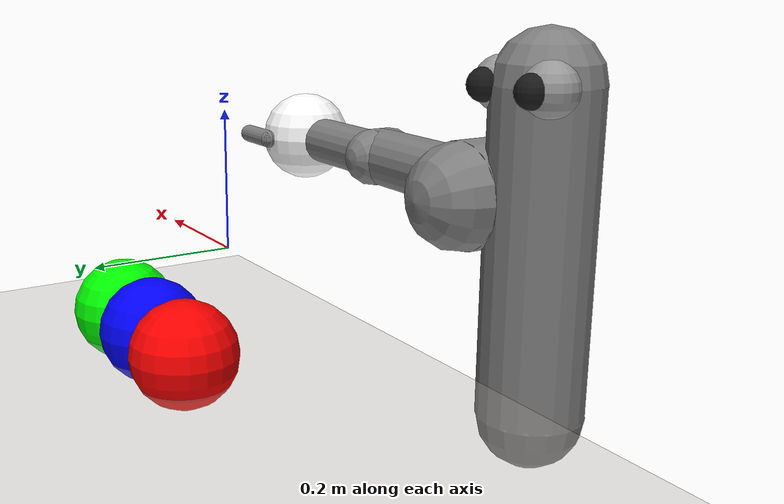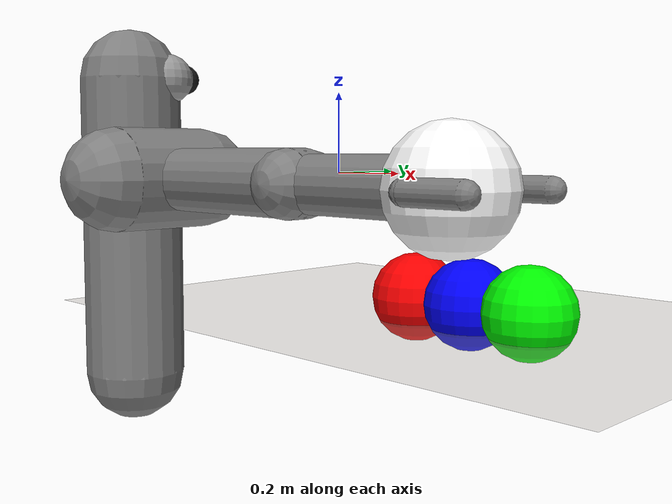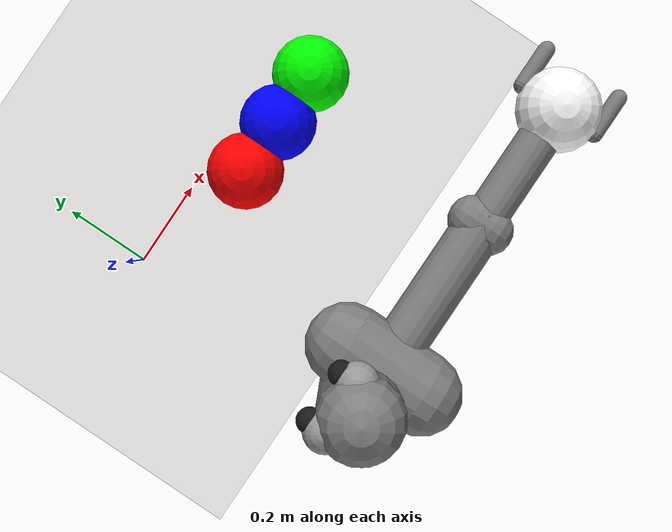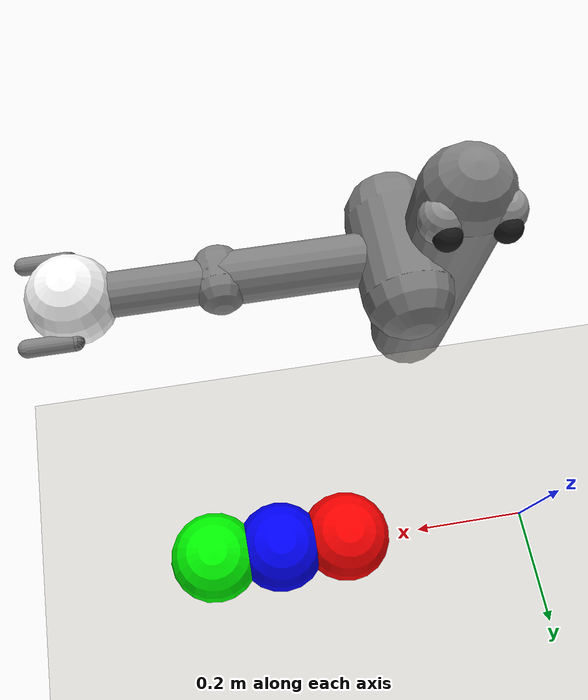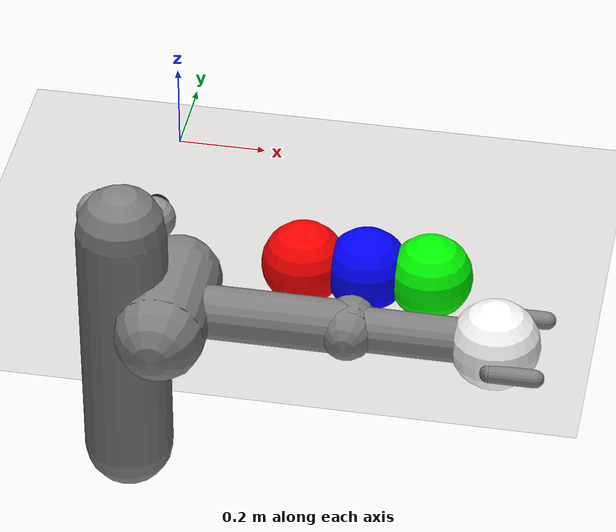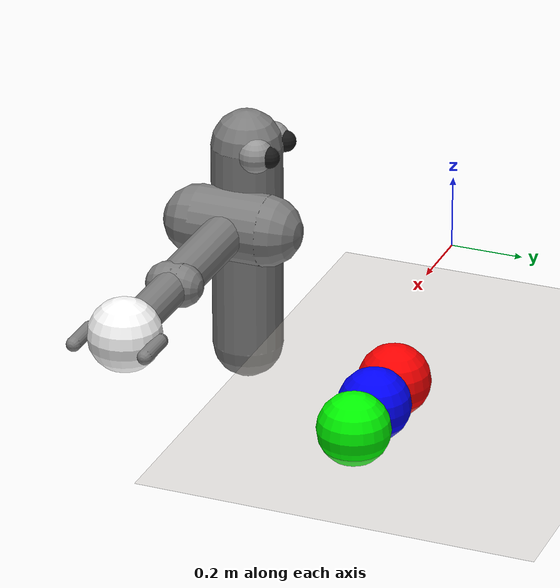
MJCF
<mujoco model="arm3d">
    <compiler inertiafromgeom="true" angle="radian" coordinate="local"/>
    <option timestep="0.01" gravity="0 0 0" iterations="20" integrator="Euler" />

    <default>
        <joint armature='0.04' damping="1" limited="true"/>
        <geom friction=".8 .1 .1" density="300" margin="0.002" condim="1" contype="0" conaffinity="0"/>
    </default>

    <worldbody>
        <camera name="maincam" mode="fixed" pos="0.25 0.85 1.4722" euler="-0.52 0 0"/>
        <light diffuse=".5 .5 .5" pos="0 0 3" dir="0 0 -1"/>
        <geom name="table" material="table" type="plane" pos="0 0.5 -0.325" size="1 1 0.1" contype="1" conaffinity="1"/>

        <body name="r_shoulder_pan_link" pos="0 -0.6 0">
            <geom name="e1" type="sphere" rgba="0.6 0.6 0.6 1" pos="-0.06 0.05 0.2" size="0.05" />
            <geom name="e2" type="sphere" rgba="0.6 0.6 0.6 1" pos=" 0.06 0.05 0.2" size="0.05" />
            <geom name="e1p" type="sphere" rgba="0.1 0.1 0.1 1" pos="-0.06 0.09 0.2" size="0.03" />
            <geom name="e2p" type="sphere" rgba="0.1 0.1 0.1 1" pos=" 0.06 0.09 0.2" size="0.03" />
            <geom name="sp" type="capsule" fromto="0 0 -0.4 0 0 0.2" size="0.1" />
            <joint name="r_shoulder_pan_joint" type="hinge" pos="0 0 0" axis="0 0 1" range="-2.2854 1.714602" damping="1.0" />

            <body name="r_shoulder_lift_link" pos="0.1 0 0">
                <geom name="sl" type="capsule" fromto="0 -0.1 0 0 0.1 0" size="0.1" />
                <joint name="r_shoulder_lift_joint" type="hinge" pos="0 0 0" axis="0 1 0" range="-0.5236 1.3963" damping="1.0" />

                <body name="r_upper_arm_roll_link" pos="0 0 0">
                    <geom name="uar" type="capsule" fromto="-0.1 0 0 0.1 0 0" size="0.02" />
                    <joint name="r_upper_arm_roll_joint" type="hinge" pos="0 0 0" axis="1 0 0" range="-1.5 1.7" damping="0.1" />

                    <body name="r_upper_arm_link" pos="0 0 0">
                        <geom name="ua" type="capsule" fromto="0 0 0 0.4 0 0" size="0.06" />

                        <body name="r_elbow_flex_link" pos="0.4 0 0">
                            <geom name="ef" type="capsule" fromto="0 -0.02 0 0.0 0.02 0" size="0.06" />
                            <joint name="r_elbow_flex_joint" type="hinge" pos="0 0 0" axis="0 1 0" range="-2.3213 0" damping="0.1" />

                            <body name="r_forearm_roll_link" pos="0 0 0">
                                <geom name="fr" type="capsule" fromto="-0.1 0 0 0.1 0 0" size="0.02" />
                                <joint name="r_forearm_roll_joint" type="hinge" limited="true" pos="0 0 0" axis="1 0 0" damping=".1" range="-1.5 1.5"/>

                                <body name="r_forearm_link" pos="0 0 0">
                                    <geom name="fa" type="capsule" fromto="0 0 0 0.291 0 0" size="0.05" />

                                    <body name="r_wrist_flex_link" pos="0.321 0 0">
                                        <geom name="wf" type="capsule" fromto="0 -0.02 0 0 0.02 0" size="0.01" />
                                        <joint name="r_wrist_flex_joint" type="hinge" pos="0 0 0" axis="0 1 0" range="-1.094 0" damping=".1" />

                                        <body name="r_wrist_roll_link" pos="0 0 0">
                                            <joint name="r_wrist_roll_joint" type="hinge" pos="0 0 0" limited="true" axis="1 0 0" damping="0.1" range="-1.5 1.5"/>
                                            <body name="tips_arm" pos="0 0 0">
                                                <geom name="tip_arml" type="sphere" pos="0.1 -0.1 0." size="0.01" />
                                                <geom name="tip_armr" type="sphere" pos="0.1 0.1 0." size="0.01" />
                                            </body>
                                            <geom type="capsule" fromto="0 -0.1 0. 0.0 +0.1 0" size="0.02" contype="1" conaffinity="1" />
                                            <geom type="capsule" fromto="0 -0.1 0. 0.1 -0.1 0" size="0.02" contype="1" conaffinity="1" />
                                            <geom type="capsule" fromto="0 +0.1 0. 0.1 +0.1 0." size="0.02" contype="1" conaffinity="1" />
                                        </body>
                                    </body>
                                </body>
                            </body>
                        </body>
                    </body>
                </body>
            </body>
        </body>

        <body name="end_eff" pos="0.821 -0.6 0">
          <joint name='ballx' type='slide' axis='1 0 0' pos='0 0 0' range='-1 1' damping='0.1' armature='0' stiffness='0'/>
          <joint name='bally' type='slide' axis='0 1 0' pos='0 0 0' range='-1 1' damping='0.1' armature='0' stiffness='0'/>
          <joint name='ballz' type='slide' axis='0 0 1' pos='0 0 0' range='-1 1' damping='0.1' armature='0' stiffness='0'/>
              <geom type="sphere" size="0.1 0.1 0.1" rgba="1 1 1 1" />
        </body>

       <body name="distract2" pos="0.60 -0.05 -0.275" >
            <geom rgba="0 1 0 1.0" type="sphere" size="0.1 0.1 0.1"
                  density="0.00001" conaffinity="0" contype="0"/>
            <joint name="distract1_free_joint" type="free" limited="false"/>
        </body>

        <body name="distract1" pos="0.30 -0.05 -0.275" >
            <geom rgba="1 0 0 1.0" type="sphere" size="0.1 0.1 0.1"
                  density="0.00001" conaffinity="0" contype="0"/>
            <joint name="distract2_free_joint" type="free" limited="false"/>
        </body>

        <body name="goal" pos="0.45 -0.05 -0.275" >
            <geom rgba="0 0 1.0 1.0" type="sphere" size="0.1 0.1 0.1"
                  density="0.00001" conaffinity="0" contype="0"/>
            <joint name="goal_free_joint" type="free" limited="false"/>
        </body>
    </worldbody>
	<asset >
		<texture type="2d" name="table" file="/home/ubuntu/LRMBMRL/envs/assets/table_texture.png"/>
		<material name="table" shininess="0.3" rgba="0.9 0.9 0.9 1" texture="table" specular="1"/>
	</asset>
    <actuator>
        <motor joint="r_shoulder_pan_joint" ctrlrange="-2.0 2.0" ctrllimited="true" />
        <motor joint="r_shoulder_lift_joint" ctrlrange="-2.0 2.0" ctrllimited="true" />
        <motor joint="r_upper_arm_roll_joint" ctrlrange="-2.0 2.0" ctrllimited="true" />
        <motor joint="r_elbow_flex_joint" ctrlrange="-2.0 2.0" ctrllimited="true" />
        <motor joint="r_forearm_roll_joint" ctrlrange="-2.0 2.0" ctrllimited="true" />
        <motor joint="r_wrist_flex_joint" ctrlrange="-2.0 2.0" ctrllimited="true" />
        <motor joint="r_wrist_roll_joint" ctrlrange="-2.0 2.0" ctrllimited="true"/>
    </actuator>
</mujoco>
